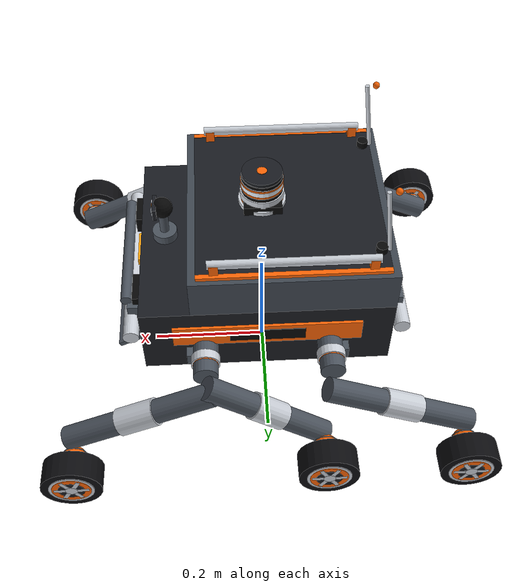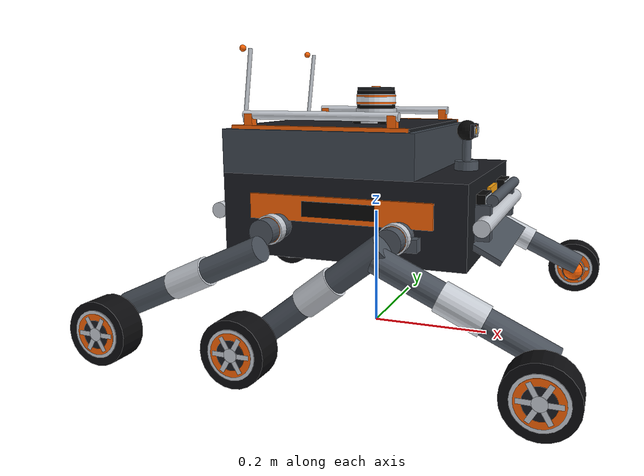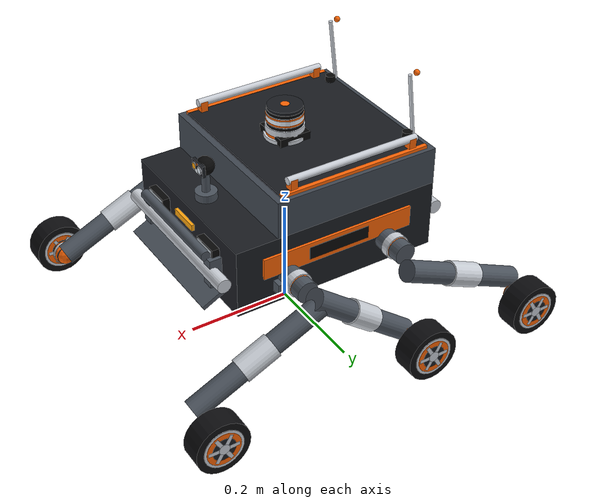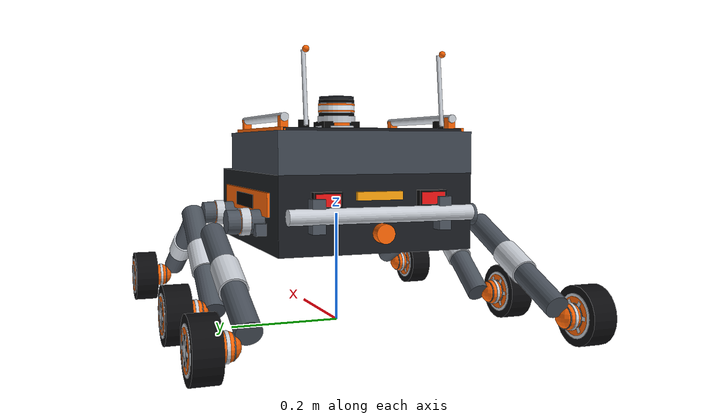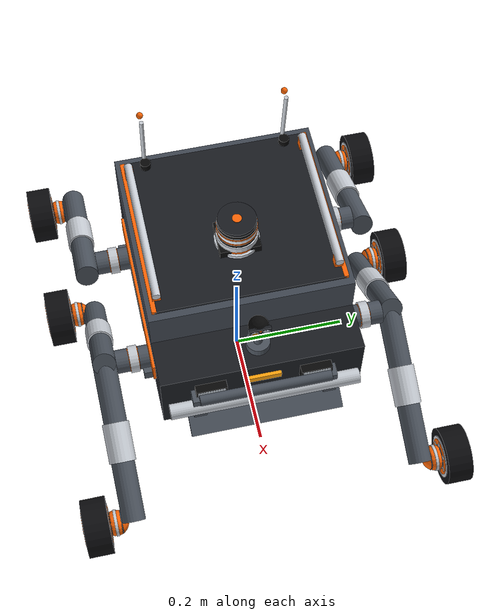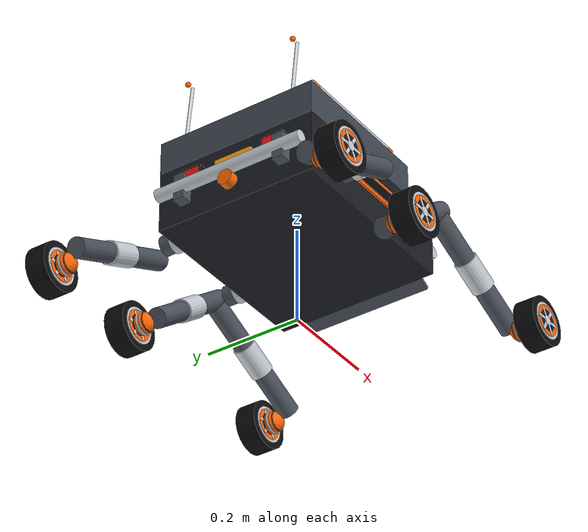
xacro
<?xml version="1.0"?>
<robot xmlns:xacro="http://www.ros.org/wiki/xacro" >

    <xacro:property name="base_length" value="0.4"/>
    <xacro:property name="base_width" value="0.34"/>
    <xacro:property name="base_height" value="0.13"/>
    <xacro:property name="base_mass" value="6.485"/>

    <xacro:property name="wheel_radius" value="0.05"/>
    <xacro:property name="wheel_length" value="0.045"/>
    <xacro:property name="wheel_mass" value="0.424"/>
    <xacro:property name="wheel_offset" value="0.12221"/>

    <xacro:macro name="cuboid_link" params="prefix m l b h x y z r p yaw material:=chassis_dark" >
        <link name="${prefix}_link">
            <visual>
                <geometry>
                    <box size="${l} ${b} ${h}"/>
                </geometry>
                <origin xyz="${x} ${y} ${z}" rpy="${r} ${p} ${yaw}"/>
                <material name="${material}"><color rgba="0.30 0.33 0.37 1.0"/></material>
            </visual>
            <xacro:cuboid_collision lbh="${l} ${b} ${h}" o_xyz="${x} ${y} ${z}" o_rpy="${r} ${p} ${yaw}"/>
            <xacro:cuboid_inertia m="${m}" l="${l}" b="${b}" h="${h}" o_xyz="${x} ${y} ${z}" o_rpy="${r} ${p} ${yaw}"/>
        </link>
    </xacro:macro>

    <xacro:macro name="cube_link" params="prefix m l b h x y z r p yaw material:=sensor_black" >
        <link name="${prefix}_link">
            <visual>
                <geometry>
                    <box size="${l} ${b} ${h}"/>
                </geometry>
                <origin xyz="${x} ${y} ${z}" rpy="${r} ${p} ${yaw}"/>
                <material name="${material}"><color rgba="0.30 0.33 0.37 1.0"/></material>
            </visual>
            <xacro:cuboid_collision lbh="${l} ${b} ${h}" o_xyz="${x} ${y} ${z}" o_rpy="${r} ${p} ${yaw}"/>
            <xacro:cuboid_inertia m="${m}" l="${l}" b="${b}" h="${h}" o_xyz="${x} ${y} ${z}" o_rpy="${r} ${p} ${yaw}"/>
        </link>
    </xacro:macro>

    <xacro:macro name="small_cuboid_link" params="prefix m l b h x y z r p yaw material:=deck_slate" >
        <link name="${prefix}_link">
            <visual>
                <geometry>
                    <box size="${l} ${b} ${h}"/>
                </geometry>
                <origin xyz="${x} ${y} ${z}" rpy="${r} ${p} ${yaw}"/>
                <material name="${material}"><color rgba="0.30 0.33 0.37 1.0"/></material>
            </visual>
            <xacro:cuboid_collision lbh="${l} ${b} ${h}" o_xyz="${x} ${y} ${z}" o_rpy="${r} ${p} ${yaw}"/>
            <xacro:cuboid_inertia m="${m}" l="${l}" b="${b}" h="${h}" o_xyz="${x} ${y} ${z}" o_rpy="${r} ${p} ${yaw}"/>
        </link>
    </xacro:macro>

    <xacro:macro name="wheel_link" params="prefix m r l x y z roll p yaw material:=rubber_black">
        <link name="${prefix}_wheel_link">
            <visual>
                <geometry>
                    <cylinder radius="${r}" length="${l}"/>
                </geometry>
                <origin xyz="${x} ${y} ${z}" rpy="${roll} ${p} ${yaw}"/>
                <material name="${material}"><color rgba="0.30 0.33 0.37 1.0"/></material>
            </visual>
            <xacro:cylinder_inertia m="${m}" r="${r}" l="${l}" o_xyz="${x} ${y} ${z}" o_rpy="${roll} ${p} ${yaw}"/>
            <xacro:cylinder_collision r="${r}" l="${l}" o_xyz="${x} ${y} ${z}" o_rpy="${roll} ${p} ${yaw}"/>
        </link>
    </xacro:macro>

    <!-- High-Detail Off-Road Beadlock Rover Wheel Macro -->
    <xacro:macro name="rover_wheel_link" params="prefix m r l x y z roll p yaw">
        <link name="${prefix}_wheel_link">
            <!-- 1. Outer Deep-Tread Rubber Tire -->
            <visual>
                <geometry>
                    <cylinder radius="${r}" length="${l - 0.002}"/>
                </geometry>
                <origin xyz="${x} ${y} ${z}" rpy="${roll} ${p} ${yaw}"/>
                <material name="tread_rubber"><color rgba="0.05 0.05 0.06 1.0"/></material>
            </visual>
            <!-- 2. Machined Alloy Outer Wheel Rim Lip -->
            <visual>
                <geometry>
                    <cylinder radius="${r * 0.74}" length="${l}"/>
                </geometry>
                <origin xyz="${x} ${y} ${z}" rpy="${roll} ${p} ${yaw}"/>
                <material name="machined_alloy"><color rgba="0.80 0.82 0.85 1.0"/></material>
            </visual>
            <!-- 3. Cyber Safety Orange Beadlock Accent Ring -->
            <visual>
                <geometry>
                    <cylinder radius="${r * 0.64}" length="${l + 0.001}"/>
                </geometry>
                <origin xyz="${x} ${y} ${z}" rpy="${roll} ${p} ${yaw}"/>
                <material name="safety_orange"><color rgba="1.0 0.40 0.02 1.0"/></material>
            </visual>
            <!-- 4. Recessed Inner Hub Well -->
            <visual>
                <geometry>
                    <cylinder radius="${r * 0.44}" length="${l + 0.0018}"/>
                </geometry>
                <origin xyz="${x} ${y} ${z}" rpy="${roll} ${p} ${yaw}"/>
                <material name="stealth_carbon"><color rgba="0.10 0.11 0.13 1.0"/></material>
            </visual>
            <!-- 5. Central Machined Axle Nut -->
            <visual>
                <geometry>
                    <cylinder radius="${r * 0.20}" length="${l + 0.003}"/>
                </geometry>
                <origin xyz="${x} ${y} ${z}" rpy="${roll} ${p} ${yaw}"/>
                <material name="machined_alloy"><color rgba="0.80 0.82 0.85 1.0"/></material>
            </visual>
            <!-- 6. Heavy-Duty Machined Spokes (rotating dynamically with wheel) -->
            <visual>
                <geometry>
                    <box size="${r * 1.15} 0.007 ${l + 0.002}"/>
                </geometry>
                <origin xyz="${x} ${y} ${z}" rpy="${roll} ${p} ${yaw}"/>
                <material name="machined_alloy"><color rgba="0.80 0.82 0.85 1.0"/></material>
            </visual>
            <visual>
                <geometry>
                    <box size="${r * 1.15} 0.007 ${l + 0.002}"/>
                </geometry>
                <origin xyz="${x} ${y} ${z}" rpy="${roll} ${p + pi/3} ${yaw}"/>
                <material name="machined_alloy"><color rgba="0.80 0.82 0.85 1.0"/></material>
            </visual>
            <visual>
                <geometry>
                    <box size="${r * 1.15} 0.007 ${l + 0.002}"/>
                </geometry>
                <origin xyz="${x} ${y} ${z}" rpy="${roll} ${p + 2*pi/3} ${yaw}"/>
                <material name="machined_alloy"><color rgba="0.80 0.82 0.85 1.0"/></material>
            </visual>
            <xacro:cylinder_inertia m="${m}" r="${r}" l="${l}" o_xyz="${x} ${y} ${z}" o_rpy="${roll} ${p} ${yaw}"/>
            <xacro:cylinder_collision r="${r}" l="${l}" o_xyz="${x} ${y} ${z}" o_rpy="${roll} ${p} ${yaw}"/>
        </link>
    </xacro:macro>

    <xacro:macro name="cylinder_link" params="prefix m r l x y z roll p yaw material:=gunmetal_suspension">
        <link name="${prefix}_cylinder_link">
            <!-- Main Suspension Linkage Shaft -->
            <visual>
                <geometry>
                    <cylinder radius="${r}" length="${l}"/>
                </geometry>
                <origin xyz="${x} ${y} ${z}" rpy="${roll} ${p} ${yaw}"/>
                <material name="${material}"><color rgba="0.30 0.33 0.37 1.0"/></material>
            </visual>
            <!-- CNC Machined Accent Collar -->
            <visual>
                <geometry>
                    <cylinder radius="${r * 1.15}" length="${l * 0.25}"/>
                </geometry>
                <origin xyz="${x} ${y} ${z}" rpy="${roll} ${p} ${yaw}"/>
                <material name="machined_alloy"><color rgba="0.80 0.82 0.85 1.0"/></material>
            </visual>
            <!-- Sealed Bearing Knuckle Pivot -->
            <visual>
                <geometry>
                    <sphere radius="${r * 1.10}"/>
                </geometry>
                <origin xyz="${x} ${y} ${z}" rpy="0 0 0"/>
                <material name="safety_orange"><color rgba="1.0 0.40 0.02 1.0"/></material>
            </visual>
            <xacro:cylinder_inertia m="${m}" r="${r}" l="${l}" o_xyz="${x} ${y} ${z}" o_rpy="${roll} ${p} ${yaw}"/>
            <xacro:cylinder_collision r="${r}" l="${l}" o_xyz="${x} ${y} ${z}" o_rpy="${roll} ${p} ${yaw}"/>
        </link>
    </xacro:macro>

    <xacro:macro name="sphere_link" params="prefix m r x y z roll p yaw material:=sensor_black">
        <link name="${prefix}_sphere_link">
            <visual>
                <geometry>
                    <sphere radius="${r}"/>
                </geometry>
                <origin xyz="${x} ${y} ${z}" rpy="${roll} ${p} ${yaw}"/>
                <material name="${material}"><color rgba="0.30 0.33 0.37 1.0"/></material>
            </visual>
            <xacro:sphere_inertia m="${m}" r="${r}" o_xyz="${x} ${y} ${z}" o_rpy="${roll} ${p} ${yaw}"/>
            <xacro:sphere_collision r="${r}" o_xyz="${x} ${y} ${z}" o_rpy="${roll} ${p} ${yaw}"/>
        </link>
    </xacro:macro>

    <link name="odom"/>
    <joint name="odom_to_base_footprint" type="fixed">
        <parent link="odom"/>
        <child  link="base_footprint"/>
        <origin xyz="0 0 0" rpy="0 0 0"/>
    </joint>

    <link name="base_footprint"/>

    <!-- High-Tech Industrial Rover Main Body (base_link) -->
    <link name="base_link">
        <!-- 1. Core Stealth Carbon Composite Hull -->
        <visual>
            <geometry>
                <box size="${base_length} ${base_width} ${base_height}"/>
            </geometry>
            <origin xyz="0 0 ${base_height/2}" rpy="0 0 0"/>
            <material name="stealth_carbon"><color rgba="0.10 0.11 0.13 1.0"/></material>
        </visual>
        <!-- 2. Cyber Safety Orange Left Flank Armor Panel -->
        <visual>
            <geometry>
                <box size="0.30 0.005 0.040"/>
            </geometry>
            <origin xyz="0 ${base_width/2 + 0.002} ${base_height/2 + 0.015}" rpy="0 0 0"/>
            <material name="safety_orange"><color rgba="1.0 0.40 0.02 1.0"/></material>
        </visual>
        <!-- 3. Left Flank Inset Cooling Vent -->
        <visual>
            <geometry>
                <box size="0.12 0.007 0.024"/>
            </geometry>
            <origin xyz="0 ${base_width/2 + 0.002} ${base_height/2 + 0.015}" rpy="0 0 0"/>
            <material name="sensor_black"><color rgba="0.03 0.03 0.03 1.0"/></material>
        </visual>
        <!-- 4. Cyber Safety Orange Right Flank Armor Panel -->
        <visual>
            <geometry>
                <box size="0.30 0.005 0.040"/>
            </geometry>
            <origin xyz="0 -${base_width/2 + 0.002} ${base_height/2 + 0.015}" rpy="0 0 0"/>
            <material name="safety_orange"><color rgba="1.0 0.40 0.02 1.0"/></material>
        </visual>
        <!-- 5. Right Flank Inset Cooling Vent -->
        <visual>
            <geometry>
                <box size="0.12 0.007 0.024"/>
            </geometry>
            <origin xyz="0 -${base_width/2 + 0.002} ${base_height/2 + 0.015}" rpy="0 0 0"/>
            <material name="sensor_black"><color rgba="0.03 0.03 0.03 1.0"/></material>
        </visual>
        <!-- 6. Left Heavy-Duty Rocker Nerf Bar (Machined Alloy Tube) -->
        <visual>
            <geometry>
                <box size="0.02 0.02 0.02"/>
            </geometry>
            <origin xyz="0.12 ${base_width/2 + 0.008} 0.038" rpy="0 0 0"/>
            <material name="gunmetal_suspension"><color rgba="0.30 0.33 0.37 1.0"/></material>
        </visual>
        <visual>
            <geometry>
                <box size="0.02 0.02 0.02"/>
            </geometry>
            <origin xyz="-0.12 ${base_width/2 + 0.008} 0.038" rpy="0 0 0"/>
            <material name="gunmetal_suspension"><color rgba="0.30 0.33 0.37 1.0"/></material>
        </visual>
        <!-- 7. Right Heavy-Duty Rocker Nerf Bar (Machined Alloy Tube) -->
        <visual>
            <geometry>
                <box size="0.02 0.02 0.02"/>
            </geometry>
            <origin xyz="0.12 -${base_width/2 + 0.008} 0.038" rpy="0 0 0"/>
            <material name="gunmetal_suspension"><color rgba="0.30 0.33 0.37 1.0"/></material>
        </visual>
        <visual>
            <geometry>
                <box size="0.02 0.02 0.02"/>
            </geometry>
            <origin xyz="-0.12 -${base_width/2 + 0.008} 0.038" rpy="0 0 0"/>
            <material name="gunmetal_suspension"><color rgba="0.30 0.33 0.37 1.0"/></material>
        </visual>
        <!-- 8. Front Off-Road Tubular Bull Bar -->
        <visual>
            <geometry>
                <cylinder radius="0.013" length="0.32"/>
            </geometry>
            <origin xyz="${base_length/2 + 0.018} 0 0.065" rpy="${pi/2} 0 0"/>
            <material name="machined_alloy"><color rgba="0.80 0.82 0.85 1.0"/></material>
        </visual>
        <visual>
            <geometry>
                <cylinder radius="0.009" length="0.22"/>
            </geometry>
            <origin xyz="${base_length/2 + 0.024} 0 0.098" rpy="${pi/2} 0 0"/>
            <material name="gunmetal_suspension"><color rgba="0.30 0.33 0.37 1.0"/></material>
        </visual>
        <visual>
            <geometry>
                <box size="0.036 0.022 0.055"/>
            </geometry>
            <origin xyz="${base_length/2 + 0.005} 0.11 0.065" rpy="0 0 0"/>
            <material name="gunmetal_suspension"><color rgba="0.30 0.33 0.37 1.0"/></material>
        </visual>
        <visual>
            <geometry>
                <box size="0.036 0.022 0.055"/>
            </geometry>
            <origin xyz="${base_length/2 + 0.005} -0.11 0.065" rpy="0 0 0"/>
            <material name="gunmetal_suspension"><color rgba="0.30 0.33 0.37 1.0"/></material>
        </visual>
        <!-- 9. Front Underbody Skid Plate / Deflector -->
        <visual>
            <geometry>
                <box size="0.075 0.26 0.008"/>
            </geometry>
            <origin xyz="${base_length/2 + 0.010} 0 0.025" rpy="0 0.48 0"/>
            <material name="gunmetal_suspension"><color rgba="0.30 0.33 0.37 1.0"/></material>
        </visual>
        <!-- 10. Front Dual High-Intensity Xenon Headlights -->
        <visual>
            <geometry>
                <box size="0.02 0.052 0.03"/>
            </geometry>
            <origin xyz="${base_length/2 + 0.004} 0.088 0.092" rpy="0 0 0"/>
            <material name="sensor_black"><color rgba="0.03 0.03 0.03 1.0"/></material>
        </visual>
        <visual>
            <geometry>
                <box size="0.006 0.046 0.024"/>
            </geometry>
            <origin xyz="${base_length/2 + 0.012} 0.088 0.092" rpy="0 0 0"/>
            <material name="headlight_xenon"><color rgba="0.92 0.96 1.0 1.0"/></material>
        </visual>
        <visual>
            <geometry>
                <box size="0.02 0.052 0.03"/>
            </geometry>
            <origin xyz="${base_length/2 + 0.004} -0.088 0.092" rpy="0 0 0"/>
            <material name="sensor_black"><color rgba="0.03 0.03 0.03 1.0"/></material>
        </visual>
        <visual>
            <geometry>
                <box size="0.006 0.046 0.024"/>
            </geometry>
            <origin xyz="${base_length/2 + 0.012} -0.088 0.092" rpy="0 0 0"/>
            <material name="headlight_xenon"><color rgba="0.92 0.96 1.0 1.0"/></material>
        </visual>
        <!-- 11. Front Center Amber Hazard Marker -->
        <visual>
            <geometry>
                <box size="0.006 0.060 0.012"/>
            </geometry>
            <origin xyz="${base_length/2 + 0.004} 0 0.10" rpy="0 0 0"/>
            <material name="hazard_amber"><color rgba="1.0 0.65 0.05 1.0"/></material>
        </visual>
        <!-- 12. Rear Heavy-Duty Tubular Bumper -->
        <visual>
            <geometry>
                <cylinder radius="0.013" length="0.32"/>
            </geometry>
            <origin xyz="-${base_length/2 + 0.018} 0 0.065" rpy="${pi/2} 0 0"/>
            <material name="machined_alloy"><color rgba="0.80 0.82 0.85 1.0"/></material>
        </visual>
        <visual>
            <geometry>
                <box size="0.036 0.022 0.055"/>
            </geometry>
            <origin xyz="-${base_length/2 + 0.005} 0.11 0.065" rpy="0 0 0"/>
            <material name="gunmetal_suspension"><color rgba="0.30 0.33 0.37 1.0"/></material>
        </visual>
        <visual>
            <geometry>
                <box size="0.036 0.022 0.055"/>
            </geometry>
            <origin xyz="-${base_length/2 + 0.005} -0.11 0.065" rpy="0 0 0"/>
            <material name="gunmetal_suspension"><color rgba="0.30 0.33 0.37 1.0"/></material>
        </visual>
        <!-- 13. Rear Emergency Recovery Hitch Loop -->
        <visual>
            <geometry>
                <cylinder radius="0.016" length="0.018"/>
            </geometry>
            <origin xyz="-${base_length/2 + 0.022} 0 0.035" rpy="0 ${pi/2} 0"/>
            <material name="safety_orange"><color rgba="1.0 0.40 0.02 1.0"/></material>
        </visual>
        <!-- 14. Rear Dual Laser Red LED Taillights -->
        <visual>
            <geometry>
                <box size="0.02 0.048 0.026"/>
            </geometry>
            <origin xyz="-${base_length/2 + 0.004} 0.092 0.090" rpy="0 0 0"/>
            <material name="sensor_black"><color rgba="0.03 0.03 0.03 1.0"/></material>
        </visual>
        <visual>
            <geometry>
                <box size="0.006 0.042 0.020"/>
            </geometry>
            <origin xyz="-${base_length/2 + 0.012} 0.092 0.090" rpy="0 0 0"/>
            <material name="taillight_red"><color rgba="0.95 0.08 0.08 1.0"/></material>
        </visual>
        <visual>
            <geometry>
                <box size="0.02 0.048 0.026"/>
            </geometry>
            <origin xyz="-${base_length/2 + 0.004} -0.092 0.090" rpy="0 0 0"/>
            <material name="sensor_black"><color rgba="0.03 0.03 0.03 1.0"/></material>
        </visual>
        <visual>
            <geometry>
                <box size="0.006 0.042 0.020"/>
            </geometry>
            <origin xyz="-${base_length/2 + 0.012} -0.092 0.090" rpy="0 0 0"/>
            <material name="taillight_red"><color rgba="0.95 0.08 0.08 1.0"/></material>
        </visual>
        <!-- 15. Rear Center Amber Hazard Bar -->
        <visual>
            <geometry>
                <box size="0.006 0.080 0.014"/>
            </geometry>
            <origin xyz="-${base_length/2 + 0.004} 0 0.095" rpy="0 0 0"/>
            <material name="hazard_amber"><color rgba="1.0 0.65 0.05 1.0"/></material>
        </visual>
        <xacro:cuboid_collision lbh="${base_length} ${base_width} ${base_height}" o_xyz="0 0 ${base_height/2}" o_rpy="0 0 0"/>
        <xacro:cuboid_inertia m="${base_mass}" l="${base_length}" b="${base_width}" h="${base_height}" o_xyz="0 0 ${base_height/2}" o_rpy="0 0 0"/>
    </link>

    <!-- 6 High-Performance Drive Wheels with Dynamic Machined Rims & Orange Beadlock -->
    <xacro:rover_wheel_link prefix="rear_right" m="${wheel_mass}" l="${wheel_length}" r="${wheel_radius}" x="0" y="0" z="0" roll="${pi/2}" p="0" yaw="0"/>

    <xacro:rover_wheel_link prefix="rear_left" m="${wheel_mass}" l="${wheel_length}" r="${wheel_radius}" x="0" y="0" z="0" roll="${pi/2}" p="0" yaw="0"/>

    <xacro:rover_wheel_link prefix="mid_right" m="${wheel_mass}" l="${wheel_length}" r="${wheel_radius}" x="0" y="0" z="0" roll="${pi/2}" p="0" yaw="0"/>

    <xacro:rover_wheel_link prefix="mid_left" m="${wheel_mass}" l="${wheel_length}" r="${wheel_radius}" x="0" y="0" z="0" roll="${pi/2}" p="0" yaw="0"/>

    <xacro:rover_wheel_link prefix="front_right" m="${wheel_mass}" l="${wheel_length}" r="${wheel_radius}" x="0" y="0" z="0" roll="${pi/2}" p="0" yaw="0"/>

    <xacro:rover_wheel_link prefix="front_left" m="${wheel_mass}" l="${wheel_length}" r="${wheel_radius}" x="0" y="0" z="0" roll="${pi/2}" p="0" yaw="0"/>

    <!-- High-Tech Equipment Upper Deck (up_base_link) -->
    <link name="up_base_link">
        <!-- 1. Titanium Enclosure Body -->
        <visual>
            <geometry>
                <box size="0.32 ${base_width} 0.07"/>
            </geometry>
            <origin xyz="-0.04 0 0.035" rpy="0 0 0"/>
            <material name="titanium_deck"><color rgba="0.25 0.28 0.32 1.0"/></material>
        </visual>
        <!-- 2. Carbon Service Hatch Deck Plate -->
        <visual>
            <geometry>
                <box size="0.295 0.315 0.005"/>
            </geometry>
            <origin xyz="-0.04 0 0.0725" rpy="0 0 0"/>
            <material name="stealth_carbon"><color rgba="0.10 0.11 0.13 1.0"/></material>
        </visual>
        <!-- 3. Cyber Safety Orange Top Deck Hazard Edges -->
        <visual>
            <geometry>
                <box size="0.295 0.008 0.006"/>
            </geometry>
            <origin xyz="-0.04 0.158 0.073" rpy="0 0 0"/>
            <material name="safety_orange"><color rgba="1.0 0.40 0.02 1.0"/></material>
        </visual>
        <visual>
            <geometry>
                <box size="0.295 0.008 0.006"/>
            </geometry>
            <origin xyz="-0.04 -0.158 0.073" rpy="0 0 0"/>
            <material name="safety_orange"><color rgba="1.0 0.40 0.02 1.0"/></material>
        </visual>
        <!-- 4. Left Equipment Grab Rails / Roll Bar -->
        <visual>
            <geometry>
                <cylinder radius="0.007" length="0.26"/>
            </geometry>
            <origin xyz="-0.04 0.150 0.092" rpy="0 ${pi/2} 0"/>
            <material name="machined_alloy"><color rgba="0.80 0.82 0.85 1.0"/></material>
        </visual>
        <visual>
            <geometry>
                <box size="0.014 0.014 0.028"/>
            </geometry>
            <origin xyz="0.08 0.150 0.080" rpy="0 0 0"/>
            <material name="safety_orange"><color rgba="1.0 0.40 0.02 1.0"/></material>
        </visual>
        <visual>
            <geometry>
                <box size="0.014 0.014 0.028"/>
            </geometry>
            <origin xyz="-0.16 0.150 0.080" rpy="0 0 0"/>
            <material name="safety_orange"><color rgba="1.0 0.40 0.02 1.0"/></material>
        </visual>
        <!-- 5. Right Equipment Grab Rails / Roll Bar -->
        <visual>
            <geometry>
                <cylinder radius="0.007" length="0.26"/>
            </geometry>
            <origin xyz="-0.04 -0.150 0.092" rpy="0 ${pi/2} 0"/>
            <material name="machined_alloy"><color rgba="0.80 0.82 0.85 1.0"/></material>
        </visual>
        <visual>
            <geometry>
                <box size="0.014 0.014 0.028"/>
            </geometry>
            <origin xyz="0.08 -0.150 0.080" rpy="0 0 0"/>
            <material name="safety_orange"><color rgba="1.0 0.40 0.02 1.0"/></material>
        </visual>
        <visual>
            <geometry>
                <box size="0.014 0.014 0.028"/>
            </geometry>
            <origin xyz="-0.16 -0.150 0.080" rpy="0 0 0"/>
            <material name="safety_orange"><color rgba="1.0 0.40 0.02 1.0"/></material>
        </visual>
        <!-- 6. Left Tactical Telemetry Antenna -->
        <visual>
            <geometry>
                <cylinder radius="0.009" length="0.018"/>
            </geometry>
            <origin xyz="-0.175 0.12 0.078" rpy="0 0 0"/>
            <material name="sensor_black"><color rgba="0.03 0.03 0.03 1.0"/></material>
        </visual>
        <visual>
            <geometry>
                <cylinder radius="0.0035" length="0.12"/>
            </geometry>
            <origin xyz="-0.180 0.12 0.138" rpy="0 0.12 0"/>
            <material name="machined_alloy"><color rgba="0.80 0.82 0.85 1.0"/></material>
        </visual>
        <visual>
            <geometry>
                <sphere radius="0.0055"/>
            </geometry>
            <origin xyz="-0.187 0.12 0.198" rpy="0 0 0"/>
            <material name="safety_orange"><color rgba="1.0 0.40 0.02 1.0"/></material>
        </visual>
        <!-- 7. Right Tactical Telemetry Antenna -->
        <visual>
            <geometry>
                <cylinder radius="0.009" length="0.018"/>
            </geometry>
            <origin xyz="-0.175 -0.12 0.078" rpy="0 0 0"/>
            <material name="sensor_black"><color rgba="0.03 0.03 0.03 1.0"/></material>
        </visual>
        <visual>
            <geometry>
                <cylinder radius="0.0035" length="0.12"/>
            </geometry>
            <origin xyz="-0.180 -0.12 0.138" rpy="0 0.12 0"/>
            <material name="machined_alloy"><color rgba="0.80 0.82 0.85 1.0"/></material>
        </visual>
        <visual>
            <geometry>
                <sphere radius="0.0055"/>
            </geometry>
            <origin xyz="-0.187 -0.12 0.198" rpy="0 0 0"/>
            <material name="safety_orange"><color rgba="1.0 0.40 0.02 1.0"/></material>
        </visual>
        <!-- 8. CNC Machined LiDAR Riser Pedestal -->
        <visual>
            <geometry>
                <cylinder radius="0.038" length="0.012"/>
            </geometry>
            <origin xyz="0 0 0.076" rpy="0 0 0"/>
            <material name="machined_alloy"><color rgba="0.80 0.82 0.85 1.0"/></material>
        </visual>
        <visual>
            <geometry>
                <cylinder radius="0.034" length="0.008"/>
            </geometry>
            <origin xyz="0 0 0.086" rpy="0 0 0"/>
            <material name="safety_orange"><color rgba="1.0 0.40 0.02 1.0"/></material>
        </visual>
        <xacro:cuboid_collision lbh="0.32 ${base_width} 0.07" o_xyz="-0.04 0 0.035" o_rpy="0 0 0"/>
        <xacro:cuboid_inertia m="1.709" l="0.32" b="${base_width}" h="0.07" o_xyz="-0.04 0 0.035" o_rpy="0 0 0"/>
    </link>

    <xacro:cylinder_link prefix="rear_right_starter" m="0.05" l="0.061105" r="0.02" x="0" y="0" z="0" roll="${pi/2}" p="0" yaw="0"/>

    <joint name="base_rear_right_starter_cylinder_joint" type="revolute">
        <parent link="base_link"/>
        <child link="rear_right_starter_cylinder_link"/>
        <origin xyz="-0.1 -0.20055 0.05" rpy="0 0 0"/>
        <axis xyz="0 1 0"/>
        <limit lower="-1.05" upper="0" effort="500.0" velocity="20"/>
        <dynamics damping="1.0" friction="1.0"/>
    </joint>

    <xacro:cylinder_link prefix="rear_left_starter" m="0.05" l="0.061105" r="0.02" x="0" y="0" z="0" roll="${pi/2}" p="0" yaw="0"/>

    <joint name="base_rear_left_starter_cylinder_joint" type="revolute">
        <parent link="base_link"/>
        <child link="rear_left_starter_cylinder_link"/>
        <origin xyz="-0.1 0.20055 0.05" rpy="0 0 0"/>
        <axis xyz="0 1 0"/>
        <limit lower="-1.05" upper="0" effort="500" velocity="20"/>
        <dynamics damping="1.0" friction="1.0"/>
    </joint>

    <xacro:cylinder_link prefix="rear_right_mid" m="0.05" l="0.2704" r="0.02" x="0" y="0" z="0" roll="0" p="1.1398" yaw="0"/>

    <joint name="starter_rear_right_mid_cylinder_joint" type="fixed">
        <parent link="rear_right_starter_cylinder_link"/>
        <child link="rear_right_mid_cylinder_link"/>
        <origin xyz="-0.1125 -0.05055 -0.075" rpy="0 0 0"/>
    </joint>

    <xacro:cylinder_link prefix="rear_left_mid" m="0.05" l="0.2704" r="0.02" x="0" y="0" z="0" roll="0" p="1.1398" yaw="0"/>

    <joint name="starter_rear_left_mid_cylinder_joint" type="fixed">
        <parent link="rear_left_starter_cylinder_link"/>
        <child link="rear_left_mid_cylinder_link"/>
        <origin xyz="-0.1125 0.05055 -0.075" rpy="0 0 0"/>
    </joint>

    <xacro:cylinder_link prefix="rear_right_last" m="0.05" l="0.021105" r="0.02" x="0" y="0" z="0" roll="${pi/2}" p="0" yaw="0"/>

    <joint name="mid_rear_right_last_cylinder_joint" type="fixed">
        <parent link="rear_right_mid_cylinder_link"/>
        <child link="rear_right_last_cylinder_link"/>
        <origin xyz="-0.1125 -0.03055 -0.07499" rpy="0 0 0"/>
    </joint>

    <xacro:cylinder_link prefix="rear_left_last" m="0.05" l="0.021105" r="0.02" x="0" y="0" z="0" roll="${pi/2}" p="0" yaw="0"/>

    <joint name="mid_rear_left_last_cylinder_joint" type="fixed">
        <parent link="rear_left_mid_cylinder_link"/>
        <child link="rear_left_last_cylinder_link"/>
        <origin xyz="-0.1125 0.03055 -0.07499" rpy="0 0 0"/>
    </joint>

    <joint name="base_footprint_base_joint" type="fixed">
        <parent link="base_footprint"/>
        <child link="base_link"/>
        <origin xyz="0 0 ${wheel_radius + 0.1}" rpy="0 0 0"/>
    </joint>

    <joint name="base_up_base_joint" type="fixed">
        <parent link="base_link"/>
        <child link="up_base_link"/>
        <origin xyz="0 0 ${base_height}" rpy="0 0 0"/>
    </joint>

    <joint name="last_rear_right_wheel_joint" type="continuous">
        <parent link="rear_right_last_cylinder_link"/>
        <child link="rear_right_wheel_link"/>
        <axis xyz="0 1 0"/>
        <origin xyz="0 -0.0330525 0" rpy="0 0 0"/>
        <limit effort="100" velocity="10"/>
        <dynamics damping="1.0" friction="1.0"/>
    </joint>

    <joint name="last_rear_left_wheel_joint" type="continuous">
        <parent link="rear_left_last_cylinder_link"/>
        <child link="rear_left_wheel_link"/>
        <axis xyz="0 1 0"/>
        <origin xyz="0 0.0330525 0" rpy="0 0 0"/>
        <limit effort="100" velocity="10"/>
        <dynamics damping="1.0" friction="1.0"/>
    </joint>

    <xacro:cylinder_link prefix="front_right_starter" m="0.05" l="0.061105" r="0.02" x="0" y="0" z="0" roll="${pi/2}" p="0" yaw="0"/>

    <joint name="base_front_right_starter_cylinder_joint" type="revolute">
        <parent link="base_link"/>
        <child link="front_right_starter_cylinder_link"/>
        <origin xyz="0.1 -0.20055 0.05" rpy="0 0 0"/>
        <axis xyz="0 1 0"/>
        <limit lower="-1.05" upper="0" effort="500" velocity="20"/>
        <dynamics damping="1.0" friction="1.0"/>
    </joint>

    <xacro:cylinder_link prefix="front_left_starter" m="0.05" l="0.061105" r="0.02" x="0" y="0" z="0" roll="${pi/2}" p="0" yaw="0"/>

    <joint name="base_front_left_starter_cylinder_joint" type="revolute">
        <parent link="base_link"/>
        <child link="front_left_starter_cylinder_link"/>
        <origin xyz="0.1 0.20055 0.05" rpy="0 0 0"/>
        <axis xyz="0 1 0"/>
        <limit lower="-1.05" upper="0" effort="500" velocity="20"/>
        <dynamics damping="1.0" friction="1.0"/>
    </joint>

    <xacro:cylinder_link prefix="front_right_mid" m="0.05" l="0.2704" r="0.02" x="0" y="0" z="0" roll="0" p="-1.1398" yaw="0"/>

    <joint name="starter_front_right_mid_cylinder_joint" type="fixed">
        <parent link="front_right_starter_cylinder_link"/>
        <child link="front_right_mid_cylinder_link"/>
        <origin xyz="0.1125 -0.05055 -0.075" rpy="0 0 0"/>
    </joint>

    <xacro:cylinder_link prefix="front_left_mid" m="0.05" l="0.2704" r="0.02" x="0" y="0" z="0" roll="0" p="-1.1398" yaw="0"/>

    <joint name="starter_front_left_mid_cylinder_joint" type="fixed">
        <parent link="front_left_starter_cylinder_link"/>
        <child link="front_left_mid_cylinder_link"/>
        <origin xyz="0.1125 0.05055 -0.075" rpy="0 0 0"/>
    </joint>

    <xacro:cylinder_link prefix="front_right_last" m="0.05" l="0.021105" r="0.02" x="0" y="0" z="0" roll="${pi/2}" p="0" yaw="0"/>

    <joint name="mid_front_right_last_cylinder_joint" type="fixed">
        <parent link="front_right_mid_cylinder_link"/>
        <child link="front_right_last_cylinder_link"/>
        <origin xyz="0.1125 -0.03055 -0.07499" rpy="0 0 0"/>
    </joint>

    <xacro:cylinder_link prefix="front_left_last" m="0.05" l="0.021105" r="0.02" x="0" y="0" z="0" roll="${pi/2}" p="0" yaw="0"/>

    <joint name="mid_front_left_last_cylinder_joint" type="fixed">
        <parent link="front_left_mid_cylinder_link"/>
        <child link="front_left_last_cylinder_link"/>
        <origin xyz="0.1125 0.03055 -0.07499" rpy="0 0 0"/>
    </joint>

    <joint name="last_front_right_wheel_joint" type="continuous">
        <parent link="front_right_last_cylinder_link"/>
        <child link="front_right_wheel_link"/>
        <axis xyz="0 1 0"/>
        <origin xyz="0 -0.0330525 0" rpy="0 0 0"/>
        <limit effort="100" velocity="10"/>
        <dynamics damping="1.0" friction="1.0"/>
    </joint>

    <joint name="last_front_left_wheel_joint" type="continuous">
        <parent link="front_left_last_cylinder_link"/>
        <child link="front_left_wheel_link"/>
        <axis xyz="0 1 0"/>
        <origin xyz="0 0.0330525 0" rpy="0 0 0"/>
        <limit effort="100" velocity="10"/>
        <dynamics damping="1.0" friction="1.0"/>
    </joint>

    <!-- Middle Wheel Suspension (Branching from front starter cylinder links) -->
    <xacro:cylinder_link prefix="middle_right_mid" m="0.05" l="0.2440" r="0.02" x="0" y="0" z="0" roll="0" p="0.9086" yaw="0"/>

    <joint name="starter_middle_right_mid_cylinder_joint" type="fixed">
        <parent link="front_right_starter_cylinder_link"/>
        <child link="middle_right_mid_cylinder_link"/>
        <origin xyz="-0.0962 -0.05055 -0.075" rpy="0 0 0"/>
    </joint>

    <xacro:cylinder_link prefix="middle_left_mid" m="0.05" l="0.2440" r="0.02" x="0" y="0" z="0" roll="0" p="0.9086" yaw="0"/>

    <joint name="starter_middle_left_mid_cylinder_joint" type="fixed">
        <parent link="front_left_starter_cylinder_link"/>
        <child link="middle_left_mid_cylinder_link"/>
        <origin xyz="-0.0962 0.05055 -0.075" rpy="0 0 0"/>
    </joint>

    <xacro:cylinder_link prefix="middle_right_last" m="0.05" l="0.021105" r="0.02" x="0" y="0" z="0" roll="${pi/2}" p="0" yaw="0"/>

    <joint name="mid_middle_right_last_cylinder_joint" type="fixed">
        <parent link="middle_right_mid_cylinder_link"/>
        <child link="middle_right_last_cylinder_link"/>
        <origin xyz="-0.0962 -0.03055 -0.075" rpy="0 0 0"/>
    </joint>

    <xacro:cylinder_link prefix="middle_left_last" m="0.05" l="0.021105" r="0.02" x="0" y="0" z="0" roll="${pi/2}" p="0" yaw="0"/>

    <joint name="mid_middle_left_last_cylinder_joint" type="fixed">
        <parent link="middle_left_mid_cylinder_link"/>
        <child link="middle_left_last_cylinder_link"/>
        <origin xyz="-0.0962 0.03055 -0.075" rpy="0 0 0"/>
    </joint>

    <joint name="last_mid_right_wheel_joint" type="continuous">
        <parent link="middle_right_last_cylinder_link"/>
        <child link="mid_right_wheel_link"/>
        <axis xyz="0 1 0"/>
        <origin xyz="0 -0.0330525 0" rpy="0 0 0"/>
        <limit effort="100" velocity="10"/>
        <dynamics damping="1.0" friction="1.0"/>
    </joint>

    <joint name="last_mid_left_wheel_joint" type="continuous">
        <parent link="middle_left_last_cylinder_link"/>
        <child link="mid_left_wheel_link"/>
        <axis xyz="0 1 0"/>
        <origin xyz="0 0.0330525 0" rpy="0 0 0"/>
        <limit effort="100" velocity="10"/>
        <dynamics damping="1.0" friction="1.0"/>
    </joint>

    <xacro:wheel_link prefix="camera_base" m="0.065" l="0.015" r="0.02" x="0" y="0" z="0.0075" roll="0" p="0" yaw="0" material="machined_alloy"/>

    <joint name="base_camera_base_joint" type="fixed">
        <parent link="base_link"/>
        <child link="camera_base_wheel_link"/>
        <origin xyz="0.16 0 ${base_height} " rpy="0 0 0"/>
    </joint>

    <xacro:wheel_link prefix="camera_cylinder" m="0.045" l="0.035" r="0.0075" x="0" y="0" z="0.0175" roll="0" p="0" yaw="0" material="gunmetal_suspension"/>

    <joint name="camera_base_cylinder_joint" type="revolute">
        <parent link="camera_base_wheel_link"/>
        <child link="camera_cylinder_wheel_link"/>
        <origin xyz="0 0 0.015" rpy="0 0 0"/>
        <axis xyz="0 0 1"/>
        <limit lower="-2.0943" upper="${pi/2.0}" effort="1.0" velocity="2.0"/>
        <dynamics friction="0.01" damping="0.005"/>
    </joint>

    <!-- Dual-Sensor RGB + Thermal Gimbal Camera Turret -->
    <link name="camera_sphere_link">
        <!-- Main Turret Body -->
        <visual>
            <geometry>
                <sphere radius="0.017"/>
            </geometry>
            <origin xyz="0 0 0" rpy="0 0 0"/>
            <material name="sensor_black"><color rgba="0.03 0.03 0.03 1.0"/></material>
        </visual>
        <!-- Dual Sensor Front Faceplate -->
        <visual>
            <geometry>
                <box size="0.006 0.036 0.022"/>
            </geometry>
            <origin xyz="0.012 0 0" rpy="0 0 0"/>
            <material name="stealth_carbon"><color rgba="0.10 0.11 0.13 1.0"/></material>
        </visual>
        <!-- RGB Camera Lens Bezel (Left Port) -->
        <visual>
            <geometry>
                <cylinder radius="0.007" length="0.005"/>
            </geometry>
            <origin xyz="0.014 0.009 0" rpy="0 ${pi/2} 0"/>
            <material name="machined_alloy"><color rgba="0.80 0.82 0.85 1.0"/></material>
        </visual>
        <!-- RGB Camera Optical Lens Glass -->
        <visual>
            <geometry>
                <cylinder radius="0.0055" length="0.002"/>
            </geometry>
            <origin xyz="0.016 0.009 0" rpy="0 ${pi/2} 0"/>
            <material name="headlight_xenon"><color rgba="0.92 0.96 1.0 1.0"/></material>
        </visual>
        <!-- Thermal Camera Lens Bezel (Right Port) -->
        <visual>
            <geometry>
                <cylinder radius="0.007" length="0.005"/>
            </geometry>
            <origin xyz="0.014 -0.009 0" rpy="0 ${pi/2} 0"/>
            <material name="machined_alloy"><color rgba="0.80 0.82 0.85 1.0"/></material>
        </visual>
        <!-- Thermal Camera Germanium IR Lens (Amber/Gold Coated) -->
        <visual>
            <geometry>
                <cylinder radius="0.0055" length="0.002"/>
            </geometry>
            <origin xyz="0.016 -0.009 0" rpy="0 ${pi/2} 0"/>
            <material name="hazard_amber"><color rgba="1.0 0.65 0.05 1.0"/></material>
        </visual>
        <!-- Sensor Status / Calibration Indicator -->
        <visual>
            <geometry>
                <cylinder radius="0.002" length="0.002"/>
            </geometry>
            <origin xyz="0.015 0 0.007" rpy="0 ${pi/2} 0"/>
            <material name="safety_orange"><color rgba="1.0 0.40 0.02 1.0"/></material>
        </visual>
        <!-- High-Power LED Flashlight Reflector & Lens (Center-Lower Port) -->
        <visual>
            <geometry>
                <cylinder radius="0.005" length="0.004"/>
            </geometry>
            <origin xyz="0.014 0 -0.005" rpy="0 ${pi/2} 0"/>
            <material name="machined_alloy"><color rgba="0.80 0.82 0.85 1.0"/></material>
        </visual>
        <visual>
            <geometry>
                <cylinder radius="0.004" length="0.002"/>
            </geometry>
            <origin xyz="0.016 0 -0.005" rpy="0 ${pi/2} 0"/>
            <material name="headlight_xenon"><color rgba="0.95 0.98 1.0 1.0"/></material>
        </visual>
        <xacro:sphere_inertia m="0.03" r="0.017" o_xyz="0 0 0" o_rpy="0 0 0"/>
        <xacro:sphere_collision r="0.017" o_xyz="0 0 0" o_rpy="0 0 0"/>
    </link>

    <joint name="camera_cylinder_sphere_joint" type="revolute">
        <parent link="camera_cylinder_wheel_link"/>
        <child link="camera_sphere_link"/>
        <origin xyz="0 0 0.05" rpy="0 0 0"/>
        <axis xyz="0 1 0"/>
        <limit lower="${-pi/2.0}" upper="${pi/2.0}" effort="1.0" velocity="2.0"/>
        <dynamics friction="0.01" damping="0.005"/>
    </joint>

    <!-- RGB Camera Optical Frame -->
    <link name="optical_camera_link"/>
    <joint name="camera_optical_camera_link" type="fixed">
        <parent link="camera_sphere_link"/>
        <child link="optical_camera_link"/>
        <origin xyz="0.016 0.009 0" rpy="-1.57 0 -1.57"/>
    </joint>

    <!-- Thermal Camera Optical Frame -->
    <link name="optical_thermal_camera_link"/>
    <joint name="camera_optical_thermal_camera_link" type="fixed">
        <parent link="camera_sphere_link"/>
        <child link="optical_thermal_camera_link"/>
        <origin xyz="0.016 -0.009 0" rpy="-1.57 0 -1.57"/>
    </joint>

    <link name="thermal_camera_link"/>
    <joint name="camera_thermal_camera_link" type="fixed">
        <parent link="camera_sphere_link"/>
        <child link="thermal_camera_link"/>
        <origin xyz="0.016 -0.009 0" rpy="0 0 0"/>
    </joint>

    <!-- High-Precision 3D Multi-Beam LiDAR Sensor (scan_link) -->
    <link name="scan_link">
        <!-- Sensor Base Enclosure -->
        <visual>
            <geometry>
                <box size="0.0605 0.069 0.020"/>
            </geometry>
            <origin xyz="0 0 -0.035" rpy="0 0 0"/>
            <material name="sensor_black"><color rgba="0.03 0.03 0.03 1.0"/></material>
        </visual>
        <!-- CNC Machined Aluminum Heat-Sink Cooling Collar -->
        <visual>
            <geometry>
                <cylinder radius="0.035" length="0.012"/>
            </geometry>
            <origin xyz="0 0 -0.021" rpy="0 0 0"/>
            <material name="machined_alloy"><color rgba="0.80 0.82 0.85 1.0"/></material>
        </visual>
        <!-- 3D LiDAR 360-Degree Optical Housing Drum -->
        <visual>
            <geometry>
                <cylinder radius="0.033" length="0.030"/>
            </geometry>
            <origin xyz="0 0 0.000" rpy="0 0 0"/>
            <material name="sensor_black"><color rgba="0.03 0.03 0.03 1.0"/></material>
        </visual>
        <!-- Optical Sensor Lens Glass Band -->
        <visual>
            <geometry>
                <cylinder radius="0.0335" length="0.018"/>
            </geometry>
            <origin xyz="0 0 0.000" rpy="0 0 0"/>
            <material name="headlight_xenon"><color rgba="0.92 0.96 1.0 1.0"/></material>
        </visual>
        <!-- Upper Emitter/Receiver Multi-Beam Diode Ring -->
        <visual>
            <geometry>
                <cylinder radius="0.034" length="0.003"/>
            </geometry>
            <origin xyz="0 0 0.006" rpy="0 0 0"/>
            <material name="safety_orange"><color rgba="1.0 0.40 0.02 1.0"/></material>
        </visual>
        <!-- Lower Emitter/Receiver Multi-Beam Diode Ring -->
        <visual>
            <geometry>
                <cylinder radius="0.034" length="0.003"/>
            </geometry>
            <origin xyz="0 0 -0.006" rpy="0 0 0"/>
            <material name="safety_orange"><color rgba="1.0 0.40 0.02 1.0"/></material>
        </visual>
        <!-- Top Armor Cap -->
        <visual>
            <geometry>
                <cylinder radius="0.032" length="0.006"/>
            </geometry>
            <origin xyz="0 0 0.018" rpy="0 0 0"/>
            <material name="stealth_carbon"><color rgba="0.10 0.11 0.13 1.0"/></material>
        </visual>
        <!-- Top Status Indicator Dot -->
        <visual>
            <geometry>
                <cylinder radius="0.008" length="0.002"/>
            </geometry>
            <origin xyz="0 0 0.021" rpy="0 0 0"/>
            <material name="safety_orange"><color rgba="1.0 0.40 0.02 1.0"/></material>
        </visual>
        <xacro:cuboid_collision lbh="0.07 0.07 0.065" o_xyz="0 0 -0.008" o_rpy="0 0 0"/>
        <xacro:cuboid_inertia m="0.25" l="0.07" b="0.07" h="0.065" o_xyz="0 0 -0.008" o_rpy="0 0 0"/>
    </link>

    <joint name="scan_joint" type="fixed">
        <origin xyz="0.0 0 ${0.07+0.045}" rpy="0 0 0"/>
        <child link="scan_link"/>
        <parent link="up_base_link"/>
    </joint>

    <link name="imu_link"/>
    <joint name="imu_joint" type="fixed">
        <origin xyz="0 0 0" rpy="0 0 0" />
        <parent link="base_link"/>
        <child link="imu_link" />
    </joint>

</robot>
